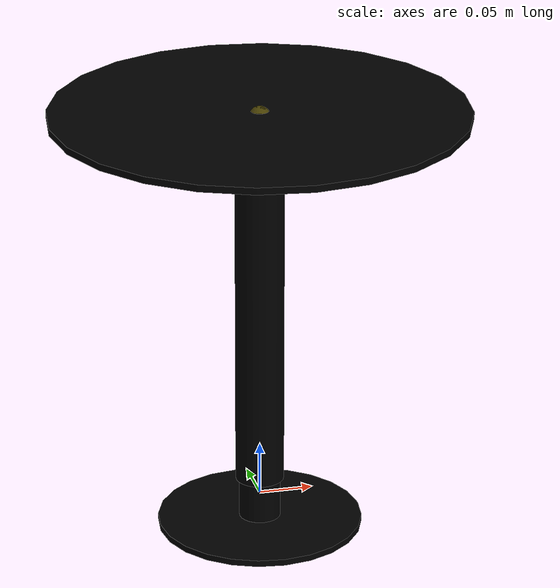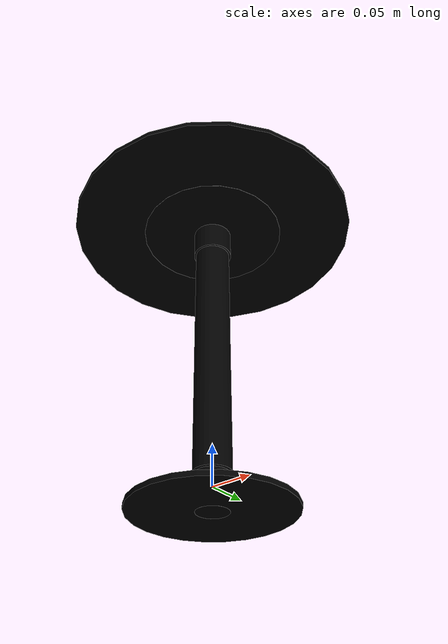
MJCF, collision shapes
<mujoco model="table_dockstra_0279">
  <custom>
    <numeric data="-0.332024 -0.069709 0.02821 0.999971 -0.0 -0.0 0.007559" name="0_part0_initpos" />
    <numeric data="-0.112954 -0.076936 0.026272 0.0 1.0 -9.4e-05 0.0" name="3_part3_initpos" />
    <numeric data="-0.316383 0.24 0.003274 0.0 0.082519 0.99659 0.0" name="2_part2_initpos" />
    <numeric data="0.01172 0.107275 0.022457 0.583591 -0.47236 0.52619 -0.399276" name="1_part1_initpos" />
  </custom>
  <asset>
    <mesh file="table_dockstra_0279/0.stl" name="part0" scale="0.0005 0.0005 0.0005" />
    <mesh file="table_dockstra_0279/3.stl" name="part3" scale="0.0005 0.0005 0.0005" />
    <mesh file="table_dockstra_0279/2.stl" name="part2" scale="0.0005 0.0005 0.0005" />
    <mesh file="table_dockstra_0279/1.stl" name="part1" scale="0.0005 0.0005 0.0005" />
  </asset>
  <equality>
    <weld active="false" body1="0_part0" body2="1_part1" solimp="1 1 0.5" solref="0.01 0.3" />
    <weld active="false" body1="3_part3" body2="1_part1" solimp="1 1 0.5" solref="0.01 0.3" />
    <weld active="false" body1="3_part3" body2="2_part2" solimp="1 1 0.5" solref="0.01 0.3" />
  </equality>
  <worldbody>
    <body name="0_part0" pos="-6.5e-10 2.5e-10 -2e-10" quat="1 0 0 0">
      <geom conaffinity="0" contype="0" density="0" mesh="part0" name="0_part0_mesh" pos="0.0 0.0 0.0" rgba="0.82 0.71 0.55 1" type="mesh" />
      <site name="0_part0_horizontal_radius_site" pos="-6.5e-10 2.5e-10 -2e-10" quat="1 0 0 0" rgba="0 0 0 0" size="0.01" />
      <site name="0_part0_top_site" pos="-6e-10 2.5e-10 0.028575000750000003" quat="1 0 0 0" rgba="0 0 0 0" size="0.01" />
      <site name="0_part0_bottom_site" pos="-6e-10 2.5e-10 -0.0285750011" quat="1 0 0 0" rgba="0 0 0 0" size="0.01" />
      <site name="0_part0_corner_site8" pos="-0.09525000125 0.09525002335 0.028575000750000003" quat="1 0 0 0" rgba="0 0 0 0" size="0.01" />
      <site name="0_part0_corner_site7" pos="0.09525 0.09525002335 0.028575000750000003" quat="1 0 0 0" rgba="0 0 0 0" size="0.01" />
      <site name="0_part0_corner_site6" pos="0.09525 -0.09525002290000001 0.028575000750000003" quat="1 0 0 0" rgba="0 0 0 0" size="0.01" />
      <site name="0_part0_corner_site5" pos="-0.09525000125 -0.09525002290000001 0.028575000750000003" quat="1 0 0 0" rgba="0 0 0 0" size="0.01" />
      <site name="0_part0_corner_site4" pos="-0.09525000125 0.09525002335 -0.0285750011" quat="1 0 0 0" rgba="0 0 0 0" size="0.01" />
      <site name="0_part0_corner_site3" pos="0.09525 0.09525002335 -0.0285750011" quat="1 0 0 0" rgba="0 0 0 0" size="0.01" />
      <site name="0_part0_corner_site2" pos="0.09525 -0.09525002290000001 -0.0285750011" quat="1 0 0 0" rgba="0 0 0 0" size="0.01" />
      <site name="0_part0_corner_site1" pos="-0.09525000125 -0.09525002290000001 -0.0285750011" quat="1 0 0 0" rgba="0 0 0 0" size="0.01" />
      <site name="base-column,conn_site1" pos="0.0 1e-08 0.01585" quat="0 1 0 0" rgba="0.9019 0.0980 0.2941 0.3" size="0.01" />
      <geom density="50" name="noviz_collision_0_part0_0" pos="4.4749999999999995e-06 8.3e-07 -0.0252" quat="1 0 0 0" rgba="0 0 0 0" size="0.09525449999999999 0.003" solref="0.001 1" type="cylinder" />
      <geom density="50" name="noviz_collision_0_part0_1" pos="4.4749999999999995e-06 8.3e-07 -0.00625" quat="1 0 0 0" rgba="0 0 0 0" size="0.01925 0.022" solref="0.001 1" type="cylinder" />
    </body>
    <body name="3_part3" pos="-1.25e-09 2.3349999999999997e-08 0.34686874425" quat="1 0 0 0">
      <geom conaffinity="0" contype="0" density="0" mesh="part3" name="3_part3_mesh" pos="0.0 0.0 0.0" rgba="0.82 0.71 0.55 1" type="mesh" />
      <site group="1" name="3_part3_ltgt_site0" pos="0.02 0 -0.3" rgba="0 0 0 0" size="0.01 0.01 0.01" type="sphere" />
      <site group="1" name="3_part3_rtgt_site0" pos="-0.02 0 -0.3" rgba="0 0 0 0" size="0.01 0.01 0.01" type="sphere" />
      <site name="3_part3_horizontal_radius_site" pos="0.0 -0.0 0.0" quat="1 0 0 0" rgba="0 0 0 0" size="0.01" />
      <site name="3_part3_top_site" pos="0.0 0.0 0.026193756100000003" quat="1 0 0 0" rgba="0 0 0 0" size="0.01" />
      <site name="3_part3_bottom_site" pos="0.0 0.0 -0.026193756100000003" quat="1 0 0 0" rgba="0 0 0 0" size="0.01" />
      <site name="3_part3_corner_site8" pos="-0.09525 0.09525 0.026193756100000003" quat="1 0 0 0" rgba="0 0 0 0" size="0.01" />
      <site name="3_part3_corner_site7" pos="0.09525 0.09525 0.026193756100000003" quat="1 0 0 0" rgba="0 0 0 0" size="0.01" />
      <site name="3_part3_corner_site6" pos="0.09525 -0.09525 0.026193756100000003" quat="1 0 0 0" rgba="0 0 0 0" size="0.01" />
      <site name="3_part3_corner_site5" pos="-0.09525 -0.09525 0.026193756100000003" quat="1 0 0 0" rgba="0 0 0 0" size="0.01" />
      <site name="3_part3_corner_site4" pos="-0.09525 0.09525 -0.026193756100000003" quat="1 0 0 0" rgba="0 0 0 0" size="0.01" />
      <site name="3_part3_corner_site3" pos="0.09525 0.09525 -0.026193756100000003" quat="1 0 0 0" rgba="0 0 0 0" size="0.01" />
      <site name="3_part3_corner_site2" pos="0.09525 -0.09525 -0.026193756100000003" quat="1 0 0 0" rgba="0 0 0 0" size="0.01" />
      <site name="3_part3_corner_site1" pos="-0.09525 -0.09525 -0.026193756100000003" quat="1 0 0 0" rgba="0 0 0 0" size="0.01" />
      <site name="topsupp-column,conn_site2" pos="0.0 0.0 -0.01366873" quat="1 0 0 0" rgba="0.2352 0.7058 0.2941 0.3" size="0.01" />
      <site name="topsupp-topplane,conn_site1" pos="0.0 0.0 0.025399995" quat="1 0 0 0" rgba="1.0 0.8823 0.0980 0.3" size="0.01" />
      <geom density="50" name="noviz_collision_3_part3_0" pos="1.1e-07 2e-08 0.02531245" quat="1 0 0 0" rgba="0 0 0 0" size="0.095 0.001" solref="0.001 1" type="cylinder" />
      <geom density="50" name="noviz_collision_3_part3_1" pos="1.1e-07 2e-08 0.00528125" quat="1 0 0 0" rgba="0 0 0 0" size="0.025 0.019" solref="0.001 1" type="cylinder" />
    </body>
    <body name="2_part2" pos="-6.5e-10 2.3349999999999997e-08 0.3746500065" quat="1 0 0 0">
      <geom conaffinity="0" contype="0" density="0" mesh="part2" name="2_part2_mesh" pos="0.0 0.0 0.0" rgba="0.82 0.71 0.55 1" type="mesh" />
      <site name="2_part2_horizontal_radius_site" pos="-6.5e-10 0.0 0.0" quat="1 0 0 0" rgba="0 0 0 0" size="0.01" />
      <site name="2_part2_top_site" pos="-6e-10 0.0 0.0031750061500000005" quat="1 0 0 0" rgba="0 0 0 0" size="0.01" />
      <site name="2_part2_bottom_site" pos="-6e-10 0.0 -0.0031750061" quat="1 0 0 0" rgba="0 0 0 0" size="0.01" />
      <site name="2_part2_corner_site8" pos="-0.19050000125 0.1905 0.0031750061500000005" quat="1 0 0 0" rgba="0 0 0 0" size="0.01" />
      <site name="2_part2_corner_site7" pos="0.1905 0.1905 0.0031750061500000005" quat="1 0 0 0" rgba="0 0 0 0" size="0.01" />
      <site name="2_part2_corner_site6" pos="0.1905 -0.1905 0.0031750061500000005" quat="1 0 0 0" rgba="0 0 0 0" size="0.01" />
      <site name="2_part2_corner_site5" pos="-0.19050000125 -0.1905 0.0031750061500000005" quat="1 0 0 0" rgba="0 0 0 0" size="0.01" />
      <site name="2_part2_corner_site4" pos="-0.19050000125 0.1905 -0.0031750061" quat="1 0 0 0" rgba="0 0 0 0" size="0.01" />
      <site name="2_part2_corner_site3" pos="0.1905 0.1905 -0.0031750061" quat="1 0 0 0" rgba="0 0 0 0" size="0.01" />
      <site name="2_part2_corner_site2" pos="0.1905 -0.1905 -0.0031750061" quat="1 0 0 0" rgba="0 0 0 0" size="0.01" />
      <site name="2_part2_corner_site1" pos="-0.19050000125 -0.1905 -0.0031750061" quat="1 0 0 0" rgba="0 0 0 0" size="0.01" />
      <site name="topplane-topsupp,conn_site1" pos="0.0 0.0 -0.002381255" quat="1 0 0 0" rgba="1.0 0.8823 0.0980 0.3" size="0.01" />
      <geom density="50" name="noviz_collision_2_part2_0" pos="-5e-09 0.0 -1.132e-05" quat="1 0 0 0" rgba="0 0 0 0" size="0.1905 0.0031875000000000002" solref="0.001 1" type="cylinder" />
    </body>
    <body name="1_part1" pos="1.25e-09 2.3349999999999997e-08 0.17462500035" quat="1 0 0 0">
      <geom conaffinity="0" contype="0" density="0" mesh="part1" name="1_part1_mesh" pos="0.0 0.0 0.0" rgba="0.82 0.71 0.55 1" type="mesh" />
      <site group="1" name="1_part1_ltgt_site0" pos="0.02 0 0.01" rgba="0 0 0 0" size="0.01 0.01 0.01" type="sphere" />
      <site group="1" name="1_part1_rtgt_site0" pos="-0.02 0 0.01" rgba="0 0 0 0" size="0.01 0.01 0.01" type="sphere" />
      <site group="1" name="1_part1_ltgt_site1" pos="0.02 0 -0.1" rgba="0 0 0 0" size="0.01 0.01 0.01" type="sphere" />
      <site group="1" name="1_part1_rtgt_site1" pos="-0.02 0 -0.1" rgba="0 0 0 0" size="0.01 0.01 0.01" type="sphere" />
      <site name="1_part1_horizontal_radius_site" pos="0.0 0.0 0.0" quat="1 0 0 0" rgba="0 0 0 0" size="0.01" />
      <site name="1_part1_top_site" pos="0.0 0.0 0.15875" quat="1 0 0 0" rgba="0 0 0 0" size="0.01" />
      <site name="1_part1_bottom_site" pos="0.0 0.0 -0.15875" quat="1 0 0 0" rgba="0 0 0 0" size="0.01" />
      <site name="1_part1_corner_site8" pos="-0.02632229615 0.026322292650000002 0.15875" quat="1 0 0 0" rgba="0 0 0 0" size="0.01" />
      <site name="1_part1_corner_site7" pos="0.02632229615 0.026322292650000002 0.15875" quat="1 0 0 0" rgba="0 0 0 0" size="0.01" />
      <site name="1_part1_corner_site6" pos="0.02632229615 -0.026322292650000002 0.15875" quat="1 0 0 0" rgba="0 0 0 0" size="0.01" />
      <site name="1_part1_corner_site5" pos="-0.02632229615 -0.026322292650000002 0.15875" quat="1 0 0 0" rgba="0 0 0 0" size="0.01" />
      <site name="1_part1_corner_site4" pos="-0.02632229615 0.026322292650000002 -0.15875" quat="1 0 0 0" rgba="0 0 0 0" size="0.01" />
      <site name="1_part1_corner_site3" pos="0.02632229615 0.026322292650000002 -0.15875" quat="1 0 0 0" rgba="0 0 0 0" size="0.01" />
      <site name="1_part1_corner_site2" pos="0.02632229615 -0.026322292650000002 -0.15875" quat="1 0 0 0" rgba="0 0 0 0" size="0.01" />
      <site name="1_part1_corner_site1" pos="-0.02632229615 -0.026322292650000002 -0.15875" quat="1 0 0 0" rgba="0 0 0 0" size="0.01" />
      <site name="column-base,conn_site1" pos="0.0 -1e-08 -0.158775" quat="0 1 0 0" rgba="0.9019 0.0980 0.2941 0.3" size="0.01" />
      <site name="column-topsupp,conn_site2" pos="0.0 0.0 0.158575" quat="1 0 0 0" rgba="0.2352 0.7058 0.2941 0.3" size="0.01" />
      <geom density="50" name="noviz_collision_1_part1_0" pos="-0.00011461 4.5640000000000003e-05 0.000125" quat="1 0 0 0" rgba="0 0 0 0" size="0.0225 0.1585" solref="0.001 1" type="cylinder" />
    </body>
  </worldbody>
<actuator /><sensor /><contact /><default /></mujoco>
